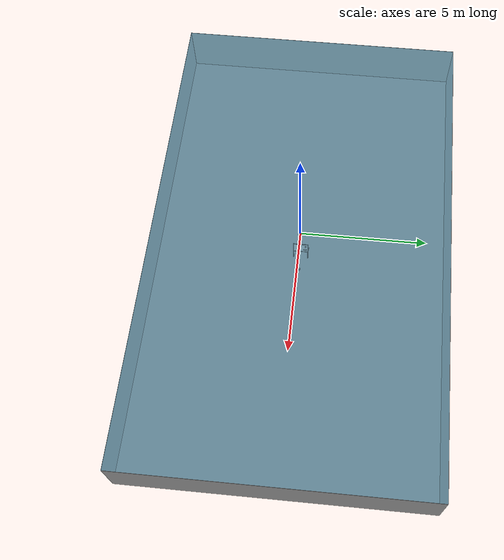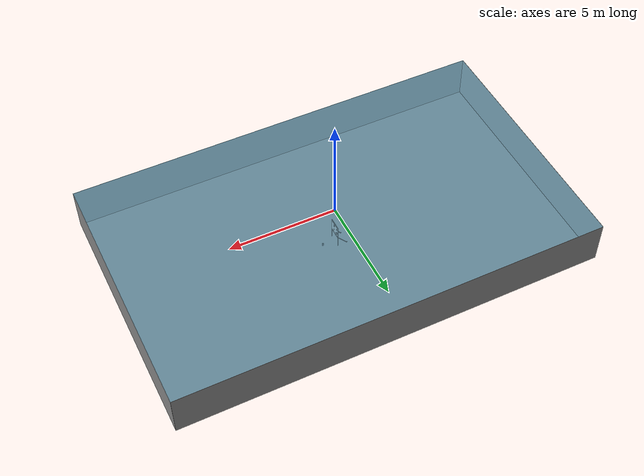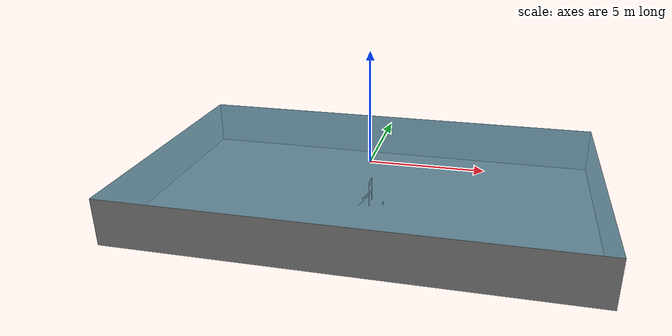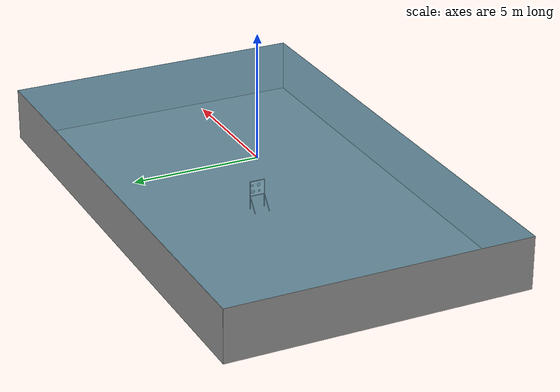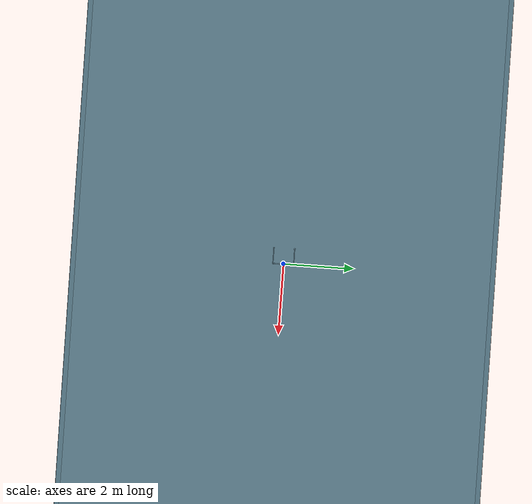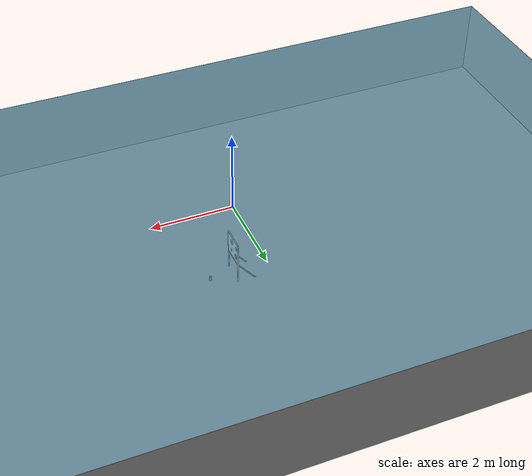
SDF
<sdf version="1.9">
 <world name="rs_task_torpedo">
  <plugin filename="gz-sim-particle-emitter-system" name="gz::sim::systems::ParticleEmitter"/>
  <plugin filename="gz-sim-physics-system" name="gz::sim::systems::Physics"/>
  <plugin filename="gz-sim-user-commands-system" name="gz::sim::systems::UserCommands"/>
  <plugin filename="gz-sim-scene-broadcaster-system" name="gz::sim::systems::SceneBroadcaster"/>
  <plugin filename="gz-sim-apply-link-wrench-system" name="gz::sim::systems::ApplyLinkWrench"/>
  <plugin filename="gz-sim-imu-system" name="gz::sim::systems::Imu"/>
  <plugin filename="gz-sim-sensors-system" name="gz::sim::systems::Sensors">
   <render_engine>ogre2</render_engine>
  </plugin>
  <plugin filename="gz-sim-dvl-system" name="gz::sim::systems::DopplerVelocityLogSystem"/>
  <plugin filename="gz-sim-buoyancy-system" name="gz::sim::systems::Buoyancy">
   <graded_buoyancy>
    <default_density>1000</default_density>
    <density_change><above_depth>0</above_depth><density>1</density></density_change>
   </graded_buoyancy>
   <enable>duburi</enable>
   <enable>payload_shot_0</enable>
   <enable>payload_shot_1</enable>
   <enable>payload_shot_2</enable>
   <enable>payload_shot_3</enable>
   <enable>payload_shot_4</enable>
   <enable>payload_shot_5</enable>
   <enable>payload_shot_6</enable>
   <enable>payload_shot_7</enable>
   <enable>payload_shot_8</enable>
   <enable>payload_shot_9</enable>
   <enable>payload_shot_10</enable>
   <enable>payload_shot_11</enable>
  </plugin>
  <physics name="default" type="dart">
   <max_step_size>0.001</max_step_size>
   <real_time_factor>1.0</real_time_factor>
   <real_time_update_rate>1000</real_time_update_rate>
   <dart>
    <collision_detector>bullet</collision_detector>
    <solver><solver_type>dantzig</solver_type></solver>
   </dart>
  </physics>
  <gravity>0 0 -9.81</gravity>
  <magnetic_field>3.9e-05 1.1e-06 2.6e-05</magnetic_field>
  <atmosphere type="adiabatic"/>
  <scene>
   <ambient>0.28 0.4 0.48 1</ambient>
   <background>0.08 0.26 0.4 1</background>
   <shadows>true</shadows>
   <fog>
    <color>0.14 0.34 0.42 1</color>
    <type>linear</type>
    <start>1.2</start>
    <end>22.0</end>
    <density>0.028</density>
   </fog>
  </scene>
  <light type="directional" name="sun">
   <pose>0 0 10 0 0 0</pose>
   <diffuse>0.48 0.52 0.56 1</diffuse>
   <specular>0.10 0.10 0.11 1</specular>
   <direction>-0.4 0.15 -0.9</direction>
  </light>
  <light type="directional" name="fill">
   <cast_shadows>false</cast_shadows>
   <pose>0 0 5 0 0 0</pose>
   <diffuse>0.22 0.28 0.34 1</diffuse>
   <specular>0.04 0.05 0.06 1</specular>
   <direction>0.3 -0.2 -1</direction>
  </light>
  <light type="directional" name="caustic_fill">
   <cast_shadows>false</cast_shadows>
   <pose>0 0 3 0 0 0</pose>
   <diffuse>0.12 0.22 0.26 1</diffuse>
   <specular>0.02 0.03 0.04 1</specular>
   <direction>0.1 0.35 -0.85</direction>
  </light>
  <model name="robosub_pool">
   <static>true</static>
   <link name="floor">
    <pose>0 0 -2.1 0 0 0</pose>
    <inertial>
     <mass>1000</mass>
     <inertia><ixx>1000</ixx><ixy>0</ixy><ixz>0</ixz><iyy>1000</iyy><iyz>0</iyz><izz>1000</izz></inertia>
    </inertial>
    <visual name="floor_visual">
     <pose>0 0 0.005 0 0 0</pose>
     <geometry><box><size>20 12 0.01</size></box></geometry>
     <material>
      <ambient>0.55 0.55 0.55 1</ambient>
      <diffuse>0.55 0.55 0.55 1</diffuse>
      <specular>0.08 0.08 0.08 1</specular>
      <emissive>0 0 0 1</emissive>
      <pbr>
       <metal>
        <albedo_map>model://robosub_textures/pool_floor.png</albedo_map>
        <metalness>0.0</metalness>
        <roughness>0.85</roughness>
       </metal>
      </pbr>
     </material>
    </visual>
    <collision name="floor_collision">
     <pose>0 0 -0.05 0 0 0</pose>
     <geometry><box><size>20 12 0.1</size></box></geometry>
    </collision>
   </link>
   <link name="wall_x_pos">
    <inertial>
     <mass>1000</mass>
     <inertia><ixx>1000</ixx><ixy>0</ixy><ixz>0</ixz><iyy>1000</iyy><iyz>0</iyz><izz>1000</izz></inertia>
    </inertial>
    <visual name="wall_x_pos_visual">
     <pose>10 0 -1.05 0 0 0</pose>
     <geometry><box><size>0.01 12 2.1</size></box></geometry>
     <material>
      <ambient>0.55 0.55 0.55 1</ambient>
      <diffuse>0.55 0.55 0.55 1</diffuse>
      <specular>0.08 0.08 0.08 1</specular>
      <emissive>0 0 0 1</emissive>
      <pbr>
       <metal>
        <albedo_map>model://robosub_textures/pool_wall_long.png</albedo_map>
        <metalness>0.0</metalness>
        <roughness>0.85</roughness>
       </metal>
      </pbr>
     </material>
    </visual>
    <collision name="wall_x_pos_collision">
     <pose>10.105 0 -1.05 0 0 0</pose>
     <geometry><box><size>0.2 12.4 2.1</size></box></geometry>
    </collision>
   </link>
   <link name="wall_x_neg">
    <inertial>
     <mass>1000</mass>
     <inertia><ixx>1000</ixx><ixy>0</ixy><ixz>0</ixz><iyy>1000</iyy><iyz>0</iyz><izz>1000</izz></inertia>
    </inertial>
    <visual name="wall_x_neg_visual">
     <pose>-10 0 -1.05 0 0 0</pose>
     <geometry><box><size>0.01 12 2.1</size></box></geometry>
     <material>
      <ambient>0.55 0.55 0.55 1</ambient>
      <diffuse>0.55 0.55 0.55 1</diffuse>
      <specular>0.08 0.08 0.08 1</specular>
      <emissive>0 0 0 1</emissive>
      <pbr>
       <metal>
        <albedo_map>model://robosub_textures/pool_wall_long.png</albedo_map>
        <metalness>0.0</metalness>
        <roughness>0.85</roughness>
       </metal>
      </pbr>
     </material>
    </visual>
    <collision name="wall_x_neg_collision">
     <pose>-10.105 0 -1.05 0 0 0</pose>
     <geometry><box><size>0.2 12.4 2.1</size></box></geometry>
    </collision>
   </link>
   <link name="wall_y_pos">
    <inertial>
     <mass>1000</mass>
     <inertia><ixx>1000</ixx><ixy>0</ixy><ixz>0</ixz><iyy>1000</iyy><iyz>0</iyz><izz>1000</izz></inertia>
    </inertial>
    <visual name="wall_y_pos_visual">
     <pose>0 6 -1.05 0 0 0</pose>
     <geometry><box><size>20 0.01 2.1</size></box></geometry>
     <material>
      <ambient>0.55 0.55 0.55 1</ambient>
      <diffuse>0.55 0.55 0.55 1</diffuse>
      <specular>0.08 0.08 0.08 1</specular>
      <emissive>0 0 0 1</emissive>
      <pbr>
       <metal>
        <albedo_map>model://robosub_textures/pool_wall_short.png</albedo_map>
        <metalness>0.0</metalness>
        <roughness>0.85</roughness>
       </metal>
      </pbr>
     </material>
    </visual>
    <collision name="wall_y_pos_collision">
     <pose>0 6.105 -1.05 0 0 0</pose>
     <geometry><box><size>20 0.2 2.1</size></box></geometry>
    </collision>
   </link>
   <link name="wall_y_neg">
    <inertial>
     <mass>1000</mass>
     <inertia><ixx>1000</ixx><ixy>0</ixy><ixz>0</ixz><iyy>1000</iyy><iyz>0</iyz><izz>1000</izz></inertia>
    </inertial>
    <visual name="wall_y_neg_visual">
     <pose>0 -6 -1.05 0 0 0</pose>
     <geometry><box><size>20 0.01 2.1</size></box></geometry>
     <material>
      <ambient>0.55 0.55 0.55 1</ambient>
      <diffuse>0.55 0.55 0.55 1</diffuse>
      <specular>0.08 0.08 0.08 1</specular>
      <emissive>0 0 0 1</emissive>
      <pbr>
       <metal>
        <albedo_map>model://robosub_textures/pool_wall_short.png</albedo_map>
        <metalness>0.0</metalness>
        <roughness>0.85</roughness>
       </metal>
      </pbr>
     </material>
    </visual>
    <collision name="wall_y_neg_collision">
     <pose>0 -6.105 -1.05 0 0 0</pose>
     <geometry><box><size>20 0.2 2.1</size></box></geometry>
    </collision>
   </link>
   <link name="water_surface">
    <inertial>
     <mass>1</mass>
     <inertia><ixx>1</ixx><ixy>0</ixy><ixz>0</ixz><iyy>1</iyy><iyz>0</iyz><izz>1</izz></inertia>
    </inertial>
    <visual name="water_surface_visual">
     <cast_shadows>false</cast_shadows>
     <transparency>0.18</transparency>
     <geometry><mesh><uri>model://robosub_meshes/meshes/water_robosub.obj</uri></mesh></geometry>
     <material>
      <ambient>0.42 0.6 0.68 1</ambient>
      <diffuse>0.42 0.6 0.68 1</diffuse>
      <specular>0.35 0.35 0.35 1</specular>
      <emissive>0.1 0.1 0.1 1</emissive>
      <pbr>
       <metal>
        <albedo_map>model://robosub_textures/water_surface.png</albedo_map>
        <metalness>0.0</metalness>
        <roughness>0.15</roughness>
       </metal>
      </pbr>
     </material>
    </visual>
   </link>
  </model>
  <model name="marine_snow">
   <static>true</static>
   <pose>0 0 -1.05 0 0 0</pose>
   <link name="link">
    <particle_emitter name="snow" type="box">
     <emitting>true</emitting>
     <size>12 12 2.1</size>
     <particle_size>0.006 0.006 0.006</particle_size>
     <lifetime>30</lifetime>
     <min_velocity>0.004</min_velocity>
     <max_velocity>0.025</max_velocity>
     <scale_rate>0</scale_rate>
     <rate>900</rate>
     <topic>marine_snow</topic>
     <material>
      <diffuse>0.80 0.84 0.80</diffuse>
      <specular>0.05 0.05 0.05</specular>
      <pbr><metal><albedo_map>model://robosub_textures/marine_snow.png</albedo_map></metal></pbr>
     </material>
    </particle_emitter>
   </link>
  </model>
  <include>
   <uri>model://robosub_torpedo_survey_repair</uri>
   <name>torpedo_board</name>
   <pose>0 0 -2.1 -0 -0 3.1416</pose>
  </include>
  <include><uri>model://robosub_pinger</uri><name>pinger_deploy</name><pose>0.6 0 -2.1 0 0 0</pose></include>
 </world>
</sdf>

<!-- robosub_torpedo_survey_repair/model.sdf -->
<sdf version="1.9">
  <model name="robosub_torpedo_survey_repair">
    <static>true</static>
    <plugin filename="gz-sim-label-system" name="gz::sim::systems::Label">
      <label>15</label>
    </plugin>
    <link name="leg_0">
      <pose>0 -0.3 0.575 0 0 0</pose>
      <inertial>
        <pose>0 0 0 0 0 0</pose>
        <mass>2</mass>
        <inertia>
          <ixx>0.220556</ixx><ixy>0</ixy><ixz>0</ixz>
          <iyy>0.220556</iyy><iyz>0</iyz>
          <izz>0.00027889</izz>
        </inertia>
      </inertial>
      <visual name="leg_0_visual">
        <pose>0 0 0 0 0 0</pose>
        <geometry><cylinder><radius>0.0167</radius><length>1.15</length></cylinder></geometry>
        <material>
          <ambient>0.62 0.63 0.65 1</ambient>
          <diffuse>0.62 0.63 0.65 1</diffuse>
          <specular>0.55 0.55 0.55 1</specular>
          <emissive>0.182 0.182 0.182 1</emissive>
          <pbr>
            <metal>
              <albedo_map>model://robosub_textures/rough_pvc.png</albedo_map>
              <metalness>0.0</metalness>
              <roughness_map>model://robosub_textures/rough_pvc.png</roughness_map>
              <normal_map>model://robosub_textures/norm_pvc.png</normal_map>
            </metal>
          </pbr>
        </material>
      </visual>
      <collision name="leg_0_collision">
        <pose>0 0 0 0 0 0</pose>
        <geometry><cylinder><radius>0.0167</radius><length>1.15</length></cylinder></geometry>
      </collision>
    </link>
    <link name="leg_1">
      <pose>0 0.3 0.575 0 0 0</pose>
      <inertial>
        <pose>0 0 0 0 0 0</pose>
        <mass>2</mass>
        <inertia>
          <ixx>0.220556</ixx><ixy>0</ixy><ixz>0</ixz>
          <iyy>0.220556</iyy><iyz>0</iyz>
          <izz>0.00027889</izz>
        </inertia>
      </inertial>
      <visual name="leg_1_visual">
        <pose>0 0 0 0 0 0</pose>
        <geometry><cylinder><radius>0.0167</radius><length>1.15</length></cylinder></geometry>
        <material>
          <ambient>0.62 0.63 0.65 1</ambient>
          <diffuse>0.62 0.63 0.65 1</diffuse>
          <specular>0.55 0.55 0.55 1</specular>
          <emissive>0.182 0.182 0.182 1</emissive>
          <pbr>
            <metal>
              <albedo_map>model://robosub_textures/rough_pvc.png</albedo_map>
              <metalness>0.0</metalness>
              <roughness_map>model://robosub_textures/rough_pvc.png</roughness_map>
              <normal_map>model://robosub_textures/norm_pvc.png</normal_map>
            </metal>
          </pbr>
        </material>
      </visual>
      <collision name="leg_1_collision">
        <pose>0 0 0 0 0 0</pose>
        <geometry><cylinder><radius>0.0167</radius><length>1.15</length></cylinder></geometry>
      </collision>
    </link>
    <link name="rail_top">
      <pose>0 0 1.15 1.5708 0 0</pose>
      <inertial>
        <pose>0 0 0 0 0 0</pose>
        <mass>1.2</mass>
        <inertia>
          <ixx>0.0360837</ixx><ixy>0</ixy><ixz>0</ixz>
          <iyy>0.0360837</iyy><iyz>0</iyz>
          <izz>0.000167334</izz>
        </inertia>
      </inertial>
      <visual name="rail_top_visual">
        <pose>0 0 0 0 0 0</pose>
        <geometry><cylinder><radius>0.0167</radius><length>0.6</length></cylinder></geometry>
        <material>
          <ambient>0.62 0.63 0.65 1</ambient>
          <diffuse>0.62 0.63 0.65 1</diffuse>
          <specular>0.55 0.55 0.55 1</specular>
          <emissive>0.182 0.182 0.182 1</emissive>
          <pbr>
            <metal>
              <albedo_map>model://robosub_textures/rough_pvc.png</albedo_map>
              <metalness>0.0</metalness>
              <roughness_map>model://robosub_textures/rough_pvc.png</roughness_map>
              <normal_map>model://robosub_textures/norm_pvc.png</normal_map>
            </metal>
          </pbr>
        </material>
      </visual>
      <collision name="rail_top_collision">
        <pose>0 0 0 0 0 0</pose>
        <geometry><cylinder><radius>0.0167</radius><length>0.6</length></cylinder></geometry>
      </collision>
    </link>
    <link name="rail_bottom">
      <pose>0 0 0.55 1.5708 0 0</pose>
      <inertial>
        <pose>0 0 0 0 0 0</pose>
        <mass>1.2</mass>
        <inertia>
          <ixx>0.0360837</ixx><ixy>0</ixy><ixz>0</ixz>
          <iyy>0.0360837</iyy><iyz>0</iyz>
          <izz>0.000167334</izz>
        </inertia>
      </inertial>
      <visual name="rail_bottom_visual">
        <pose>0 0 0 0 0 0</pose>
        <geometry><cylinder><radius>0.0167</radius><length>0.6</length></cylinder></geometry>
        <material>
          <ambient>0.62 0.63 0.65 1</ambient>
          <diffuse>0.62 0.63 0.65 1</diffuse>
          <specular>0.55 0.55 0.55 1</specular>
          <emissive>0.182 0.182 0.182 1</emissive>
          <pbr>
            <metal>
              <albedo_map>model://robosub_textures/rough_pvc.png</albedo_map>
              <metalness>0.0</metalness>
              <roughness_map>model://robosub_textures/rough_pvc.png</roughness_map>
              <normal_map>model://robosub_textures/norm_pvc.png</normal_map>
            </metal>
          </pbr>
        </material>
      </visual>
      <collision name="rail_bottom_collision">
        <pose>0 0 0 0 0 0</pose>
        <geometry><cylinder><radius>0.0167</radius><length>0.6</length></cylinder></geometry>
      </collision>
    </link>
    <link name="brace_0">
      <pose>0.225 -0.3 0.275 0 2.45586 0</pose>
      <inertial>
        <pose>0 0 0 0 0 0</pose>
        <mass>0.8</mass>
        <inertia>
          <ixx>0.0337024</ixx><ixy>0</ixy><ixz>0</ixz>
          <iyy>0.0337024</iyy><iyz>0</iyz>
          <izz>7.13958e-05</izz>
        </inertia>
      </inertial>
      <visual name="brace_0_visual">
        <pose>0 0 0 0 0 0</pose>
        <geometry><cylinder><radius>0.01336</radius><length>0.710634</length></cylinder></geometry>
        <material>
          <ambient>0.62 0.63 0.65 1</ambient>
          <diffuse>0.62 0.63 0.65 1</diffuse>
          <specular>0.55 0.55 0.55 1</specular>
          <emissive>0.182 0.182 0.182 1</emissive>
          <pbr>
            <metal>
              <albedo_map>model://robosub_textures/rough_pvc.png</albedo_map>
              <metalness>0.0</metalness>
              <roughness_map>model://robosub_textures/rough_pvc.png</roughness_map>
              <normal_map>model://robosub_textures/norm_pvc.png</normal_map>
            </metal>
          </pbr>
        </material>
      </visual>
      <collision name="brace_0_collision">
        <pose>0 0 0 0 0 0</pose>
        <geometry><cylinder><radius>0.01336</radius><length>0.710634</length></cylinder></geometry>
      </collision>
    </link>
    <link name="brace_foot_0">
      <pose>0.45 -0.3 0.006 0 0 0</pose>
      <inertial>
        <pose>0 0 0 0 0 0</pose>
        <mass>0.3</mass>
        <inertia>
          <ixx>5.71469e-05</ixx><ixy>0</ixy><ixz>0</ixz>
          <iyy>5.71469e-05</iyy><iyz>0</iyz>
          <izz>0.000107094</izz>
        </inertia>
      </inertial>
      <visual name="brace_foot_0_visual">
        <pose>0 0 0 0 0 0</pose>
        <geometry><cylinder><radius>0.02672</radius><length>0.012</length></cylinder></geometry>
        <material>
          <ambient>0.62 0.63 0.65 1</ambient>
          <diffuse>0.62 0.63 0.65 1</diffuse>
          <specular>0.55 0.55 0.55 1</specular>
          <emissive>0.182 0.182 0.182 1</emissive>
          <pbr>
            <metal>
              <albedo_map>model://robosub_textures/rough_pvc.png</albedo_map>
              <metalness>0.0</metalness>
              <roughness_map>model://robosub_textures/rough_pvc.png</roughness_map>
              <normal_map>model://robosub_textures/norm_pvc.png</normal_map>
            </metal>
          </pbr>
        </material>
      </visual>
      <collision name="brace_foot_0_collision">
        <pose>0 0 0 0 0 0</pose>
        <geometry><cylinder><radius>0.02672</radius><length>0.012</length></cylinder></geometry>
        <surface>
          <friction>
            <ode><mu>0.8</mu><mu2>0.8</mu2></ode>
            <bullet><friction>0.8</friction><friction2>0.8</friction2></bullet>
          </friction>
        </surface>
      </collision>
    </link>
    <link name="brace_1">
      <pose>0.225 0.3 0.275 0 2.45586 0</pose>
      <inertial>
        <pose>0 0 0 0 0 0</pose>
        <mass>0.8</mass>
        <inertia>
          <ixx>0.0337024</ixx><ixy>0</ixy><ixz>0</ixz>
          <iyy>0.0337024</iyy><iyz>0</iyz>
          <izz>7.13958e-05</izz>
        </inertia>
      </inertial>
      <visual name="brace_1_visual">
        <pose>0 0 0 0 0 0</pose>
        <geometry><cylinder><radius>0.01336</radius><length>0.710634</length></cylinder></geometry>
        <material>
          <ambient>0.62 0.63 0.65 1</ambient>
          <diffuse>0.62 0.63 0.65 1</diffuse>
          <specular>0.55 0.55 0.55 1</specular>
          <emissive>0.182 0.182 0.182 1</emissive>
          <pbr>
            <metal>
              <albedo_map>model://robosub_textures/rough_pvc.png</albedo_map>
              <metalness>0.0</metalness>
              <roughness_map>model://robosub_textures/rough_pvc.png</roughness_map>
              <normal_map>model://robosub_textures/norm_pvc.png</normal_map>
            </metal>
          </pbr>
        </material>
      </visual>
      <collision name="brace_1_collision">
        <pose>0 0 0 0 0 0</pose>
        <geometry><cylinder><radius>0.01336</radius><length>0.710634</length></cylinder></geometry>
      </collision>
    </link>
    <link name="brace_foot_1">
      <pose>0.45 0.3 0.006 0 0 0</pose>
      <inertial>
        <pose>0 0 0 0 0 0</pose>
        <mass>0.3</mass>
        <inertia>
          <ixx>5.71469e-05</ixx><ixy>0</ixy><ixz>0</ixz>
          <iyy>5.71469e-05</iyy><iyz>0</iyz>
          <izz>0.000107094</izz>
        </inertia>
      </inertial>
      <visual name="brace_foot_1_visual">
        <pose>0 0 0 0 0 0</pose>
        <geometry><cylinder><radius>0.02672</radius><length>0.012</length></cylinder></geometry>
        <material>
          <ambient>0.62 0.63 0.65 1</ambient>
          <diffuse>0.62 0.63 0.65 1</diffuse>
          <specular>0.55 0.55 0.55 1</specular>
          <emissive>0.182 0.182 0.182 1</emissive>
          <pbr>
            <metal>
              <albedo_map>model://robosub_textures/rough_pvc.png</albedo_map>
              <metalness>0.0</metalness>
              <roughness_map>model://robosub_textures/rough_pvc.png</roughness_map>
              <normal_map>model://robosub_textures/norm_pvc.png</normal_map>
            </metal>
          </pbr>
        </material>
      </visual>
      <collision name="brace_foot_1_collision">
        <pose>0 0 0 0 0 0</pose>
        <geometry><cylinder><radius>0.02672</radius><length>0.012</length></cylinder></geometry>
        <surface>
          <friction>
            <ode><mu>0.8</mu><mu2>0.8</mu2></ode>
            <bullet><friction>0.8</friction><friction2>0.8</friction2></bullet>
          </friction>
        </surface>
      </collision>
    </link>
    <link name="board">
      <pose>0 0 0.85 0 0 0</pose>
      <inertial>
        <pose>0 0 0 0 0 0</pose>
        <mass>3</mass>
        <inertia>
          <ixx>0.18</ixx><ixy>0</ixy><ixz>0</ixz>
          <iyy>0.0901</iyy><iyz>0</iyz>
          <izz>0.0901</izz>
        </inertia>
      </inertial>
      <visual name="board_visual">
        <pose>0 0 0 0 0 0</pose>
        <geometry><mesh><uri>model://robosub_meshes/meshes/torpedo_plate.obj</uri></mesh></geometry>
        <material>
          <ambient>1 1 1 1</ambient>
          <diffuse>1 1 1 1</diffuse>
          <specular>0.06 0.06 0.06 1</specular>
          <emissive>0.1 0.1 0.1 1</emissive>
          <pbr>
            <metal>
              <albedo_map>model://robosub_textures/torpedo_panel_survey_repair.png</albedo_map>
              <metalness>0.0</metalness>
              <roughness>0.6</roughness>
            </metal>
          </pbr>
        </material>
      </visual>
    </link>
    <link name="plate_c0">
      <pose>0 0 0.561538 0 0 0</pose>
      <inertial>
        <pose>0 0 0 0 0 0</pose>
        <mass>0.05</mass>
        <inertia>
          <ixx>0.00150222</ixx><ixy>0</ixy><ixz>0</ixz>
          <iyy>3.8856e-06</iyy><iyz>0</iyz>
          <izz>0.00150167</izz>
        </inertia>
      </inertial>
      <collision name="plate_c0_collision">
        <pose>0 0 0 0 0 0</pose>
        <geometry><box><size>0.02 0.6 0.0230769</size></box></geometry>
      </collision>
    </link>
    <link name="plate_c1">
      <pose>0 0 0.584615 0 0 0</pose>
      <inertial>
        <pose>0 0 0 0 0 0</pose>
        <mass>0.05</mass>
        <inertia>
          <ixx>0.00150222</ixx><ixy>0</ixy><ixz>0</ixz>
          <iyy>3.8856e-06</iyy><iyz>0</iyz>
          <izz>0.00150167</izz>
        </inertia>
      </inertial>
      <collision name="plate_c1_collision">
        <pose>0 0 0 0 0 0</pose>
        <geometry><box><size>0.02 0.6 0.0230769</size></box></geometry>
      </collision>
    </link>
    <link name="plate_c2">
      <pose>0 0 0.607692 0 0 0</pose>
      <inertial>
        <pose>0 0 0 0 0 0</pose>
        <mass>0.05</mass>
        <inertia>
          <ixx>0.00150222</ixx><ixy>0</ixy><ixz>0</ixz>
          <iyy>3.8856e-06</iyy><iyz>0</iyz>
          <izz>0.00150167</izz>
        </inertia>
      </inertial>
      <collision name="plate_c2_collision">
        <pose>0 0 0 0 0 0</pose>
        <geometry><box><size>0.02 0.6 0.0230769</size></box></geometry>
      </collision>
    </link>
    <link name="plate_c3">
      <pose>0 0 0.630769 0 0 0</pose>
      <inertial>
        <pose>0 0 0 0 0 0</pose>
        <mass>0.05</mass>
        <inertia>
          <ixx>0.00150222</ixx><ixy>0</ixy><ixz>0</ixz>
          <iyy>3.8856e-06</iyy><iyz>0</iyz>
          <izz>0.00150167</izz>
        </inertia>
      </inertial>
      <collision name="plate_c3_collision">
        <pose>0 0 0 0 0 0</pose>
        <geometry><box><size>0.02 0.6 0.0230769</size></box></geometry>
      </collision>
    </link>
    <link name="plate_c4">
      <pose>0 -0.255503 0.653846 0 0 0</pose>
      <inertial>
        <pose>0 0 0 0 0 0</pose>
        <mass>0.05</mass>
        <inertia>
          <ixx>3.52193e-05</ixx><ixy>0</ixy><ixz>0</ixz>
          <iyy>3.8856e-06</iyy><iyz>0</iyz>
          <izz>3.46671e-05</izz>
        </inertia>
      </inertial>
      <collision name="plate_c4_collision">
        <pose>0 0 0 0 0 0</pose>
        <geometry><box><size>0.02 0.0889949 0.0230769</size></box></geometry>
      </collision>
    </link>
    <link name="plate_c5">
      <pose>0 0.0725025 0.653846 0 0 0</pose>
      <inertial>
        <pose>0 0 0 0 0 0</pose>
        <mass>0.05</mass>
        <inertia>
          <ixx>0.000864804</ixx><ixy>0</ixy><ixz>0</ixz>
          <iyy>3.8856e-06</iyy><iyz>0</iyz>
          <izz>0.000864252</izz>
        </inertia>
      </inertial>
      <collision name="plate_c5_collision">
        <pose>0 0 0 0 0 0</pose>
        <geometry><box><size>0.02 0.454995 0.0230769</size></box></geometry>
      </collision>
    </link>
    <link name="plate_c6">
      <pose>0 -0.26984 0.676923 0 0 0</pose>
      <inertial>
        <pose>0 0 0 0 0 0</pose>
        <mass>0.05</mass>
        <inertia>
          <ixx>1.73791e-05</ixx><ixy>0</ixy><ixz>0</ixz>
          <iyy>3.8856e-06</iyy><iyz>0</iyz>
          <izz>1.68268e-05</izz>
        </inertia>
      </inertial>
      <collision name="plate_c6_collision">
        <pose>0 0 0 0 0 0</pose>
        <geometry><box><size>0.02 0.0603194 0.0230769</size></box></geometry>
      </collision>
    </link>
    <link name="plate_c7">
      <pose>0 -0.0314609 0.676923 0 0 0</pose>
      <inertial>
        <pose>0 0 0 0 0 0</pose>
        <mass>0.05</mass>
        <inertia>
          <ixx>0.000152188</ixx><ixy>0</ixy><ixz>0</ixz>
          <iyy>3.8856e-06</iyy><iyz>0</iyz>
          <izz>0.000151636</izz>
        </inertia>
      </inertial>
      <collision name="plate_c7_collision">
        <pose>0 0 0 0 0 0</pose>
        <geometry><box><size>0.02 0.189717 0.0230769</size></box></geometry>
      </collision>
    </link>
    <link name="plate_c8">
      <pose>0 0.205551 0.676923 0 0 0</pose>
      <inertial>
        <pose>0 0 0 0 0 0</pose>
        <mass>0.05</mass>
        <inertia>
          <ixx>0.000150895</ixx><ixy>0</ixy><ixz>0</ixz>
          <iyy>3.8856e-06</iyy><iyz>0</iyz>
          <izz>0.000150343</izz>
        </inertia>
      </inertial>
      <collision name="plate_c8_collision">
        <pose>0 0 0 0 0 0</pose>
        <geometry><box><size>0.02 0.188898 0.0230769</size></box></geometry>
      </collision>
    </link>
    <link name="plate_c9">
      <pose>0 -0.275323 0.7 0 0 0</pose>
      <inertial>
        <pose>0 0 0 0 0 0</pose>
        <mass>0.05</mass>
        <inertia>
          <ixx>1.23681e-05</ixx><ixy>0</ixy><ixz>0</ixz>
          <iyy>3.8856e-06</iyy><iyz>0</iyz>
          <izz>1.18158e-05</izz>
        </inertia>
      </inertial>
      <collision name="plate_c9_collision">
        <pose>0 0 0 0 0 0</pose>
        <geometry><box><size>0.02 0.0493539 0.0230769</size></box></geometry>
      </collision>
    </link>
    <link name="plate_c10">
      <pose>0 -0.0360306 0.7 0 0 0</pose>
      <inertial>
        <pose>0 0 0 0 0 0</pose>
        <mass>0.05</mass>
        <inertia>
          <ixx>0.000107089</ixx><ixy>0</ixy><ixz>0</ixz>
          <iyy>3.8856e-06</iyy><iyz>0</iyz>
          <izz>0.000106536</izz>
        </inertia>
      </inertial>
      <collision name="plate_c10_collision">
        <pose>0 0 0 0 0 0</pose>
        <geometry><box><size>0.02 0.158646 0.0230769</size></box></geometry>
      </collision>
    </link>
    <link name="plate_c11">
      <pose>0 0.215604 0.7 0 0 0</pose>
      <inertial>
        <pose>0 0 0 0 0 0</pose>
        <mass>0.05</mass>
        <inertia>
          <ixx>0.000120931</ixx><ixy>0</ixy><ixz>0</ixz>
          <iyy>3.8856e-06</iyy><iyz>0</iyz>
          <izz>0.000120379</izz>
        </inertia>
      </inertial>
      <collision name="plate_c11_collision">
        <pose>0 0 0 0 0 0</pose>
        <geometry><box><size>0.02 0.168793 0.0230769</size></box></geometry>
      </collision>
    </link>
    <link name="plate_c12">
      <pose>0 -0.276408 0.723077 0 0 0</pose>
      <inertial>
        <pose>0 0 0 0 0 0</pose>
        <mass>0.05</mass>
        <inertia>
          <ixx>1.14954e-05</ixx><ixy>0</ixy><ixz>0</ixz>
          <iyy>3.8856e-06</iyy><iyz>0</iyz>
          <izz>1.09432e-05</izz>
        </inertia>
      </inertial>
      <collision name="plate_c12_collision">
        <pose>0 0 0 0 0 0</pose>
        <geometry><box><size>0.02 0.0471844 0.0230769</size></box></geometry>
      </collision>
    </link>
    <link name="plate_c13">
      <pose>0 -0.0365811 0.723077 0 0 0</pose>
      <inertial>
        <pose>0 0 0 0 0 0</pose>
        <mass>0.05</mass>
        <inertia>
          <ixx>0.00010002</ixx><ixy>0</ixy><ixz>0</ixz>
          <iyy>3.8856e-06</iyy><iyz>0</iyz>
          <izz>9.94676e-05</izz>
        </inertia>
      </inertial>
      <collision name="plate_c13_collision">
        <pose>0 0 0 0 0 0</pose>
        <geometry><box><size>0.02 0.153206 0.0230769</size></box></geometry>
      </collision>
    </link>
    <link name="plate_c14">
      <pose>0 0.217239 0.723077 0 0 0</pose>
      <inertial>
        <pose>0 0 0 0 0 0</pose>
        <mass>0.05</mass>
        <inertia>
          <ixx>0.000116375</ixx><ixy>0</ixy><ixz>0</ixz>
          <iyy>3.8856e-06</iyy><iyz>0</iyz>
          <izz>0.000115823</izz>
        </inertia>
      </inertial>
      <collision name="plate_c14_collision">
        <pose>0 0 0 0 0 0</pose>
        <geometry><box><size>0.02 0.165522 0.0230769</size></box></geometry>
      </collision>
    </link>
    <link name="plate_c15">
      <pose>0 -0.273544 0.746154 0 0 0</pose>
      <inertial>
        <pose>0 0 0 0 0 0</pose>
        <mass>0.05</mass>
        <inertia>
          <ixx>1.3884e-05</ixx><ixy>0</ixy><ixz>0</ixz>
          <iyy>3.8856e-06</iyy><iyz>0</iyz>
          <izz>1.33317e-05</izz>
        </inertia>
      </inertial>
      <collision name="plate_c15_collision">
        <pose>0 0 0 0 0 0</pose>
        <geometry><box><size>0.02 0.0529113 0.0230769</size></box></geometry>
      </collision>
    </link>
    <link name="plate_c16">
      <pose>0 -0.0349592 0.746154 0 0 0</pose>
      <inertial>
        <pose>0 0 0 0 0 0</pose>
        <mass>0.05</mass>
        <inertia>
          <ixx>0.000119685</ixx><ixy>0</ixy><ixz>0</ixz>
          <iyy>3.8856e-06</iyy><iyz>0</iyz>
          <izz>0.000119132</izz>
        </inertia>
      </inertial>
      <collision name="plate_c16_collision">
        <pose>0 0 0 0 0 0</pose>
        <geometry><box><size>0.02 0.167904 0.0230769</size></box></geometry>
      </collision>
    </link>
    <link name="plate_c17">
      <pose>0 0.212754 0.746154 0 0 0</pose>
      <inertial>
        <pose>0 0 0 0 0 0</pose>
        <mass>0.05</mass>
        <inertia>
          <ixx>0.000129085</ixx><ixy>0</ixy><ixz>0</ixz>
          <iyy>3.8856e-06</iyy><iyz>0</iyz>
          <izz>0.000128532</izz>
        </inertia>
      </inertial>
      <collision name="plate_c17_collision">
        <pose>0 0 0 0 0 0</pose>
        <geometry><box><size>0.02 0.174493 0.0230769</size></box></geometry>
      </collision>
    </link>
    <link name="plate_c18">
      <pose>0 -0.265351 0.769231 0 0 0</pose>
      <inertial>
        <pose>0 0 0 0 0 0</pose>
        <mass>0.05</mass>
        <inertia>
          <ixx>2.22286e-05</ixx><ixy>0</ixy><ixz>0</ixz>
          <iyy>3.8856e-06</iyy><iyz>0</iyz>
          <izz>2.16763e-05</izz>
        </inertia>
      </inertial>
      <collision name="plate_c18_collision">
        <pose>0 0 0 0 0 0</pose>
        <geometry><box><size>0.02 0.0692988 0.0230769</size></box></geometry>
      </collision>
    </link>
    <link name="plate_c19">
      <pose>0 0.0823506 0.769231 0 0 0</pose>
      <inertial>
        <pose>0 0 0 0 0 0</pose>
        <mass>0.05</mass>
        <inertia>
          <ixx>0.00079174</ixx><ixy>0</ixy><ixz>0</ixz>
          <iyy>3.8856e-06</iyy><iyz>0</iyz>
          <izz>0.000791188</izz>
        </inertia>
      </inertial>
      <collision name="plate_c19_collision">
        <pose>0 0 0 0 0 0</pose>
        <geometry><box><size>0.02 0.435299 0.0230769</size></box></geometry>
      </collision>
    </link>
    <link name="plate_c20">
      <pose>0 0 0.792308 0 0 0</pose>
      <inertial>
        <pose>0 0 0 0 0 0</pose>
        <mass>0.05</mass>
        <inertia>
          <ixx>0.00150222</ixx><ixy>0</ixy><ixz>0</ixz>
          <iyy>3.8856e-06</iyy><iyz>0</iyz>
          <izz>0.00150167</izz>
        </inertia>
      </inertial>
      <collision name="plate_c20_collision">
        <pose>0 0 0 0 0 0</pose>
        <geometry><box><size>0.02 0.6 0.0230769</size></box></geometry>
      </collision>
    </link>
    <link name="plate_c21">
      <pose>0 0 0.815385 0 0 0</pose>
      <inertial>
        <pose>0 0 0 0 0 0</pose>
        <mass>0.05</mass>
        <inertia>
          <ixx>0.00150222</ixx><ixy>0</ixy><ixz>0</ixz>
          <iyy>3.8856e-06</iyy><iyz>0</iyz>
          <izz>0.00150167</izz>
        </inertia>
      </inertial>
      <collision name="plate_c21_collision">
        <pose>0 0 0 0 0 0</pose>
        <geometry><box><size>0.02 0.6 0.0230769</size></box></geometry>
      </collision>
    </link>
    <link name="plate_c22">
      <pose>0 0 0.838462 0 0 0</pose>
      <inertial>
        <pose>0 0 0 0 0 0</pose>
        <mass>0.05</mass>
        <inertia>
          <ixx>0.00150222</ixx><ixy>0</ixy><ixz>0</ixz>
          <iyy>3.8856e-06</iyy><iyz>0</iyz>
          <izz>0.00150167</izz>
        </inertia>
      </inertial>
      <collision name="plate_c22_collision">
        <pose>0 0 0 0 0 0</pose>
        <geometry><box><size>0.02 0.6 0.0230769</size></box></geometry>
      </collision>
    </link>
    <link name="plate_c23">
      <pose>0 0 0.861538 0 0 0</pose>
      <inertial>
        <pose>0 0 0 0 0 0</pose>
        <mass>0.05</mass>
        <inertia>
          <ixx>0.00150222</ixx><ixy>0</ixy><ixz>0</ixz>
          <iyy>3.8856e-06</iyy><iyz>0</iyz>
          <izz>0.00150167</izz>
        </inertia>
      </inertial>
      <collision name="plate_c23_collision">
        <pose>0 0 0 0 0 0</pose>
        <geometry><box><size>0.02 0.6 0.0230769</size></box></geometry>
      </collision>
    </link>
    <link name="plate_c24">
      <pose>0 0 0.884615 0 0 0</pose>
      <inertial>
        <pose>0 0 0 0 0 0</pose>
        <mass>0.05</mass>
        <inertia>
          <ixx>0.00150222</ixx><ixy>0</ixy><ixz>0</ixz>
          <iyy>3.8856e-06</iyy><iyz>0</iyz>
          <izz>0.00150167</izz>
        </inertia>
      </inertial>
      <collision name="plate_c24_collision">
        <pose>0 0 0 0 0 0</pose>
        <geometry><box><size>0.02 0.6 0.0230769</size></box></geometry>
      </collision>
    </link>
    <link name="plate_c25">
      <pose>0 0 0.907692 0 0 0</pose>
      <inertial>
        <pose>0 0 0 0 0 0</pose>
        <mass>0.05</mass>
        <inertia>
          <ixx>0.00150222</ixx><ixy>0</ixy><ixz>0</ixz>
          <iyy>3.8856e-06</iyy><iyz>0</iyz>
          <izz>0.00150167</izz>
        </inertia>
      </inertial>
      <collision name="plate_c25_collision">
        <pose>0 0 0 0 0 0</pose>
        <geometry><box><size>0.02 0.6 0.0230769</size></box></geometry>
      </collision>
    </link>
    <link name="plate_c26">
      <pose>0 -0.142601 0.930769 0 0 0</pose>
      <inertial>
        <pose>0 0 0 0 0 0</pose>
        <mass>0.05</mass>
        <inertia>
          <ixx>0.000415128</ixx><ixy>0</ixy><ixz>0</ixz>
          <iyy>3.8856e-06</iyy><iyz>0</iyz>
          <izz>0.000414576</izz>
        </inertia>
      </inertial>
      <collision name="plate_c26_collision">
        <pose>0 0 0 0 0 0</pose>
        <geometry><box><size>0.02 0.314799 0.0230769</size></box></geometry>
      </collision>
    </link>
    <link name="plate_c27">
      <pose>0 0.205101 0.930769 0 0 0</pose>
      <inertial>
        <pose>0 0 0 0 0 0</pose>
        <mass>0.05</mass>
        <inertia>
          <ixx>0.000152317</ixx><ixy>0</ixy><ixz>0</ixz>
          <iyy>3.8856e-06</iyy><iyz>0</iyz>
          <izz>0.000151765</izz>
        </inertia>
      </inertial>
      <collision name="plate_c27_collision">
        <pose>0 0 0 0 0 0</pose>
        <geometry><box><size>0.02 0.189799 0.0230769</size></box></geometry>
      </collision>
    </link>
    <link name="plate_c28">
      <pose>0 -0.273004 0.953846 0 0 0</pose>
      <inertial>
        <pose>0 0 0 0 0 0</pose>
        <mass>0.05</mass>
        <inertia>
          <ixx>1.43657e-05</ixx><ixy>0</ixy><ixz>0</ixz>
          <iyy>3.8856e-06</iyy><iyz>0</iyz>
          <izz>1.38134e-05</izz>
        </inertia>
      </inertial>
      <collision name="plate_c28_collision">
        <pose>0 0 0 0 0 0</pose>
        <geometry><box><size>0.02 0.0539928 0.0230769</size></box></geometry>
      </collision>
    </link>
    <link name="plate_c29">
      <pose>0 -0.0855408 0.953846 0 0 0</pose>
      <inertial>
        <pose>0 0 0 0 0 0</pose>
        <mass>0.05</mass>
        <inertia>
          <ixx>0.000119685</ixx><ixy>0</ixy><ixz>0</ixz>
          <iyy>3.8856e-06</iyy><iyz>0</iyz>
          <izz>0.000119132</izz>
        </inertia>
      </inertial>
      <collision name="plate_c29_collision">
        <pose>0 0 0 0 0 0</pose>
        <geometry><box><size>0.02 0.167904 0.0230769</size></box></geometry>
      </collision>
    </link>
    <link name="plate_c30">
      <pose>0 0.213294 0.953846 0 0 0</pose>
      <inertial>
        <pose>0 0 0 0 0 0</pose>
        <mass>0.05</mass>
        <inertia>
          <ixx>0.000127517</ixx><ixy>0</ixy><ixz>0</ixz>
          <iyy>3.8856e-06</iyy><iyz>0</iyz>
          <izz>0.000126965</izz>
        </inertia>
      </inertial>
      <collision name="plate_c30_collision">
        <pose>0 0 0 0 0 0</pose>
        <geometry><box><size>0.02 0.173411 0.0230769</size></box></geometry>
      </collision>
    </link>
    <link name="plate_c31">
      <pose>0 -0.277489 0.976923 0 0 0</pose>
      <inertial>
        <pose>0 0 0 0 0 0</pose>
        <mass>0.05</mass>
        <inertia>
          <ixx>1.06647e-05</ixx><ixy>0</ixy><ixz>0</ixz>
          <iyy>3.8856e-06</iyy><iyz>0</iyz>
          <izz>1.01125e-05</izz>
        </inertia>
      </inertial>
      <collision name="plate_c31_collision">
        <pose>0 0 0 0 0 0</pose>
        <geometry><box><size>0.02 0.0450221 0.0230769</size></box></geometry>
      </collision>
    </link>
    <link name="plate_c32">
      <pose>0 -0.0839189 0.976923 0 0 0</pose>
      <inertial>
        <pose>0 0 0 0 0 0</pose>
        <mass>0.05</mass>
        <inertia>
          <ixx>0.00010002</ixx><ixy>0</ixy><ixz>0</ixz>
          <iyy>3.8856e-06</iyy><iyz>0</iyz>
          <izz>9.94676e-05</izz>
        </inertia>
      </inertial>
      <collision name="plate_c32_collision">
        <pose>0 0 0 0 0 0</pose>
        <geometry><box><size>0.02 0.153206 0.0230769</size></box></geometry>
      </collision>
    </link>
    <link name="plate_c33">
      <pose>0 0.216158 0.976923 0 0 0</pose>
      <inertial>
        <pose>0 0 0 0 0 0</pose>
        <mass>0.05</mass>
        <inertia>
          <ixx>0.000119377</ixx><ixy>0</ixy><ixz>0</ixz>
          <iyy>3.8856e-06</iyy><iyz>0</iyz>
          <izz>0.000118825</izz>
        </inertia>
      </inertial>
      <collision name="plate_c33_collision">
        <pose>0 0 0 0 0 0</pose>
        <geometry><box><size>0.02 0.167684 0.0230769</size></box></geometry>
      </collision>
    </link>
    <link name="plate_c34">
      <pose>0 -0.275854 1 0 0 0</pose>
      <inertial>
        <pose>0 0 0 0 0 0</pose>
        <mass>0.05</mass>
        <inertia>
          <ixx>1.19363e-05</ixx><ixy>0</ixy><ixz>0</ixz>
          <iyy>3.8856e-06</iyy><iyz>0</iyz>
          <izz>1.13841e-05</izz>
        </inertia>
      </inertial>
      <collision name="plate_c34_collision">
        <pose>0 0 0 0 0 0</pose>
        <geometry><box><size>0.02 0.0482926 0.0230769</size></box></geometry>
      </collision>
    </link>
    <link name="plate_c35">
      <pose>0 -0.0844694 1 0 0 0</pose>
      <inertial>
        <pose>0 0 0 0 0 0</pose>
        <mass>0.05</mass>
        <inertia>
          <ixx>0.000107089</ixx><ixy>0</ixy><ixz>0</ixz>
          <iyy>3.8856e-06</iyy><iyz>0</iyz>
          <izz>0.000106536</izz>
        </inertia>
      </inertial>
      <collision name="plate_c35_collision">
        <pose>0 0 0 0 0 0</pose>
        <geometry><box><size>0.02 0.158646 0.0230769</size></box></geometry>
      </collision>
    </link>
    <link name="plate_c36">
      <pose>0 0.215073 1 0 0 0</pose>
      <inertial>
        <pose>0 0 0 0 0 0</pose>
        <mass>0.05</mass>
        <inertia>
          <ixx>0.000122429</ixx><ixy>0</ixy><ixz>0</ixz>
          <iyy>3.8856e-06</iyy><iyz>0</iyz>
          <izz>0.000121876</izz>
        </inertia>
      </inertial>
      <collision name="plate_c36_collision">
        <pose>0 0 0 0 0 0</pose>
        <geometry><box><size>0.02 0.169854 0.0230769</size></box></geometry>
      </collision>
    </link>
    <link name="plate_c37">
      <pose>0 -0.265801 1.02308 0 0 0</pose>
      <inertial>
        <pose>0 0 0 0 0 0</pose>
        <mass>0.05</mass>
        <inertia>
          <ixx>2.17116e-05</ixx><ixy>0</ixy><ixz>0</ixz>
          <iyy>3.8856e-06</iyy><iyz>0</iyz>
          <izz>2.11593e-05</izz>
        </inertia>
      </inertial>
      <collision name="plate_c37_collision">
        <pose>0 0 0 0 0 0</pose>
        <geometry><box><size>0.02 0.0683976 0.0230769</size></box></geometry>
      </collision>
    </link>
    <link name="plate_c38">
      <pose>0 -0.0890391 1.02308 0 0 0</pose>
      <inertial>
        <pose>0 0 0 0 0 0</pose>
        <mass>0.05</mass>
        <inertia>
          <ixx>0.000152188</ixx><ixy>0</ixy><ixz>0</ixz>
          <iyy>3.8856e-06</iyy><iyz>0</iyz>
          <izz>0.000151636</izz>
        </inertia>
      </inertial>
      <collision name="plate_c38_collision">
        <pose>0 0 0 0 0 0</pose>
        <geometry><box><size>0.02 0.189717 0.0230769</size></box></geometry>
      </collision>
    </link>
    <link name="plate_c39">
      <pose>0 0.20959 1.02308 0 0 0</pose>
      <inertial>
        <pose>0 0 0 0 0 0</pose>
        <mass>0.05</mass>
        <inertia>
          <ixx>0.000138451</ixx><ixy>0</ixy><ixz>0</ixz>
          <iyy>3.8856e-06</iyy><iyz>0</iyz>
          <izz>0.000137899</izz>
        </inertia>
      </inertial>
      <collision name="plate_c39_collision">
        <pose>0 0 0 0 0 0</pose>
        <geometry><box><size>0.02 0.180819 0.0230769</size></box></geometry>
      </collision>
    </link>
    <link name="plate_c40">
      <pose>0 -0.132753 1.04615 0 0 0</pose>
      <inertial>
        <pose>0 0 0 0 0 0</pose>
        <mass>0.05</mass>
        <inertia>
          <ixx>0.000468414</ixx><ixy>0</ixy><ixz>0</ixz>
          <iyy>3.8856e-06</iyy><iyz>0</iyz>
          <izz>0.000467862</izz>
        </inertia>
      </inertial>
      <collision name="plate_c40_collision">
        <pose>0 0 0 0 0 0</pose>
        <geometry><box><size>0.02 0.334495 0.0230769</size></box></geometry>
      </collision>
    </link>
    <link name="plate_c41">
      <pose>0 0.195253 1.04615 0 0 0</pose>
      <inertial>
        <pose>0 0 0 0 0 0</pose>
        <mass>0.05</mass>
        <inertia>
          <ixx>0.000185086</ixx><ixy>0</ixy><ixz>0</ixz>
          <iyy>3.8856e-06</iyy><iyz>0</iyz>
          <izz>0.000184534</izz>
        </inertia>
      </inertial>
      <collision name="plate_c41_collision">
        <pose>0 0 0 0 0 0</pose>
        <geometry><box><size>0.02 0.209495 0.0230769</size></box></geometry>
      </collision>
    </link>
    <link name="plate_c42">
      <pose>0 0 1.06923 0 0 0</pose>
      <inertial>
        <pose>0 0 0 0 0 0</pose>
        <mass>0.05</mass>
        <inertia>
          <ixx>0.00150222</ixx><ixy>0</ixy><ixz>0</ixz>
          <iyy>3.8856e-06</iyy><iyz>0</iyz>
          <izz>0.00150167</izz>
        </inertia>
      </inertial>
      <collision name="plate_c42_collision">
        <pose>0 0 0 0 0 0</pose>
        <geometry><box><size>0.02 0.6 0.0230769</size></box></geometry>
      </collision>
    </link>
    <link name="plate_c43">
      <pose>0 0 1.09231 0 0 0</pose>
      <inertial>
        <pose>0 0 0 0 0 0</pose>
        <mass>0.05</mass>
        <inertia>
          <ixx>0.00150222</ixx><ixy>0</ixy><ixz>0</ixz>
          <iyy>3.8856e-06</iyy><iyz>0</iyz>
          <izz>0.00150167</izz>
        </inertia>
      </inertial>
      <collision name="plate_c43_collision">
        <pose>0 0 0 0 0 0</pose>
        <geometry><box><size>0.02 0.6 0.0230769</size></box></geometry>
      </collision>
    </link>
    <link name="plate_c44">
      <pose>0 0 1.11538 0 0 0</pose>
      <inertial>
        <pose>0 0 0 0 0 0</pose>
        <mass>0.05</mass>
        <inertia>
          <ixx>0.00150222</ixx><ixy>0</ixy><ixz>0</ixz>
          <iyy>3.8856e-06</iyy><iyz>0</iyz>
          <izz>0.00150167</izz>
        </inertia>
      </inertial>
      <collision name="plate_c44_collision">
        <pose>0 0 0 0 0 0</pose>
        <geometry><box><size>0.02 0.6 0.0230769</size></box></geometry>
      </collision>
    </link>
    <link name="plate_c45">
      <pose>0 0 1.13846 0 0 0</pose>
      <inertial>
        <pose>0 0 0 0 0 0</pose>
        <mass>0.05</mass>
        <inertia>
          <ixx>0.00150222</ixx><ixy>0</ixy><ixz>0</ixz>
          <iyy>3.8856e-06</iyy><iyz>0</iyz>
          <izz>0.00150167</izz>
        </inertia>
      </inertial>
      <collision name="plate_c45_collision">
        <pose>0 0 0 0 0 0</pose>
        <geometry><box><size>0.02 0.6 0.0230769</size></box></geometry>
      </collision>
    </link>
  </model>
</sdf>

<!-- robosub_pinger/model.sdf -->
<sdf version="1.9">
  <model name="robosub_pinger">
    <static>true</static>
    <plugin filename="gz-sim-label-system" name="gz::sim::systems::Label">
      <label>20</label>
    </plugin>
    <link name="body">
      <pose>0 0 0.06 0 0 0</pose>
      <inertial>
        <pose>0 0 0 0 0 0</pose>
        <mass>0.5</mass>
        <inertia>
          <ixx>0.000753125</ixx><ixy>0</ixy><ixz>0</ixz>
          <iyy>0.000753125</iyy><iyz>0</iyz>
          <izz>0.00030625</izz>
        </inertia>
      </inertial>
      <visual name="body_visual">
        <pose>0 0 0 0 0 0</pose>
        <geometry><cylinder><radius>0.035</radius><length>0.12</length></cylinder></geometry>
        <material>
          <ambient>0.15 0.15 0.17 1</ambient>
          <diffuse>0.15 0.15 0.17 1</diffuse>
          <specular>0.14 0.14 0.14 1</specular>
          <emissive>0.1 0.1 0.1 1</emissive>
          <pbr>
            <metal>
              <albedo_map>model://robosub_textures/rough_plastic.png</albedo_map>
              <metalness>0.0</metalness>
              <roughness_map>model://robosub_textures/rough_plastic.png</roughness_map>
              <normal_map>model://robosub_textures/norm_plastic.png</normal_map>
            </metal>
          </pbr>
        </material>
      </visual>
      <collision name="body_collision">
        <pose>0 0 0 0 0 0</pose>
        <geometry><cylinder><radius>0.035</radius><length>0.12</length></cylinder></geometry>
      </collision>
    </link>
  </model>
</sdf>
